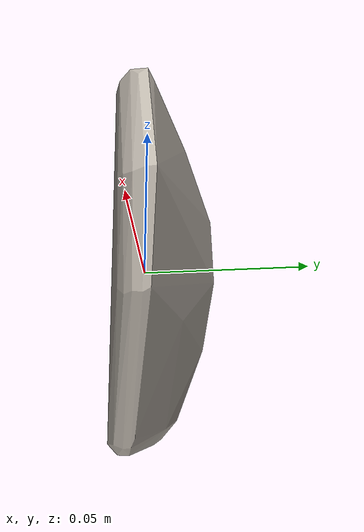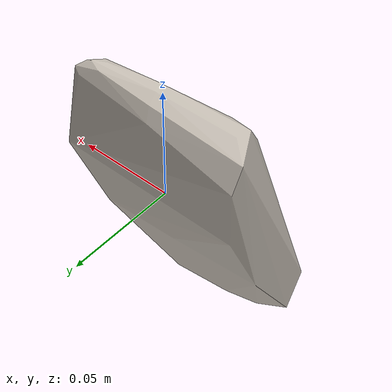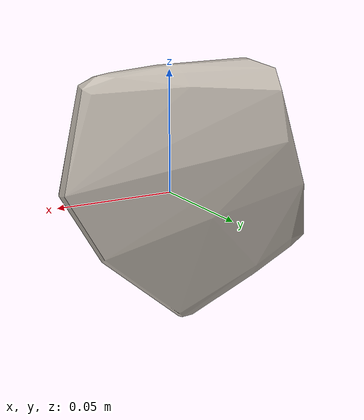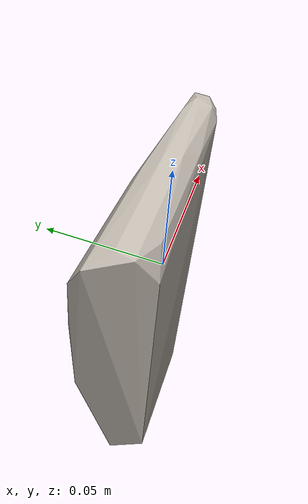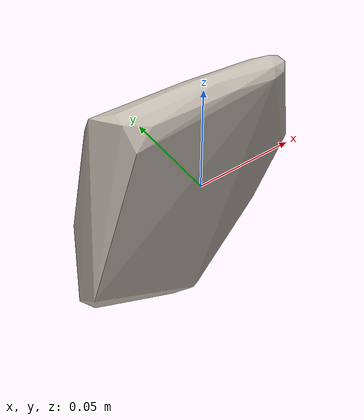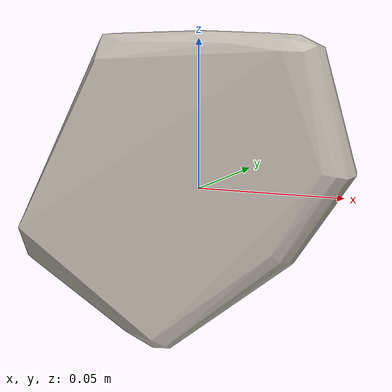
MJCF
<mujoco model="hand">
  <asset>
    <mesh file="meshes/LeftHand_corrected.stl" name="hand_mesh"/>
    <texture file="../textures/bread.png" type="2d" name="tex-bread" />
    <material name="bread" reflectance="0.7" texrepeat="15 15" texture="tex-bread" texuniform="true"/>
  </asset>
  <worldbody>
    <body mocap="true">
      <body name="object">
        <body name="hand" pos="0.0 0.0 0.0" quat="1.0000 0.0000 0.0000 0.0000" mocap="true">
            <geom pos="0.0 0.0 0.0" mesh="hand_mesh" type="mesh" material="bread" solimp="0.998 0.998 0.001" solref="0.001 1" density="100" friction="0.95 0.3 0.1" group="0" condim="4" contype="0" conaffinity="1"/>
        </body>
      </body>
      <site rgba="0 0 0 0" size="0.005" pos="0.0 0.0 -0.10" name="bottom_site"/>
      <site rgba="0 0 0 0" size="0.005" pos="0.0 0.0 0.0" name="top_site"/>
      <site rgba="0 0 0 0" size="0.005" pos="0.11 0.11 0.0" name="horizontal_radius_site"/>
    </body>
  </worldbody>
</mujoco>
